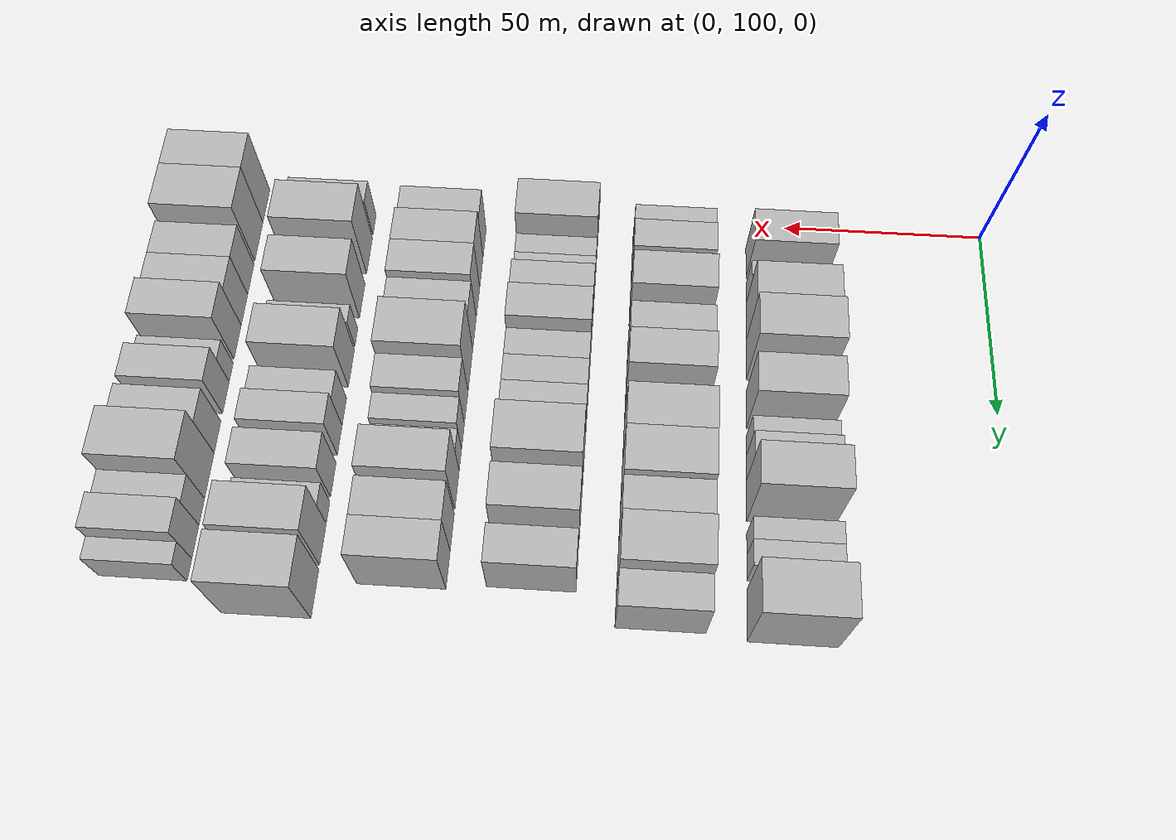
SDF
<sdf version="1.6">
 <world name="default">
  <model name="building_67">
   <static>1</static>
   <pose>50.0000 111.1929 0 0.000000 0.000000 0.000000</pose>
   <link name="link">
    <pose>0 0 9.00 0 0 0</pose>
    <collision name="collision"><geometry><box><size>20.0000 8.9841 18.0000</size></box></geometry></collision>
    <visual name="visual">
     <cast_shadows>0</cast_shadows>
     <geometry><box><size>20.0000 8.9841 18.0000</size></box></geometry>
     <material>
      <script>
       <uri>model://HANNAS_wall/materials/scripts</uri>
       <uri>model://HANNAS_wall/materials/textures</uri>
       <name>vrc/HANNAS_wall</name>
      </script>
     </material>
    </visual>
   </link>
  </model>
  <model name="building_68">
   <static>1</static>
   <pose>50.0000 120.5003 0 0.000000 0.000000 0.000000</pose>
   <link name="link">
    <pose>0 0 6.00 0 0 0</pose>
    <collision name="collision"><geometry><box><size>20.0000 5.6305 12.0000</size></box></geometry></collision>
    <visual name="visual">
     <cast_shadows>0</cast_shadows>
     <geometry><box><size>20.0000 5.6305 12.0000</size></box></geometry>
     <material>
      <script>
       <uri>model://HANNAS_wall/materials/scripts</uri>
       <uri>model://HANNAS_wall/materials/textures</uri>
       <name>vrc/HANNAS_wall</name>
      </script>
     </material>
    </visual>
   </link>
  </model>
  <model name="building_69">
   <static>1</static>
   <pose>50.0000 128.4947 0 0.000000 0.000000 0.000000</pose>
   <link name="link">
    <pose>0 0 10.50 0 0 0</pose>
    <collision name="collision"><geometry><box><size>20.0000 10.3583 21.0000</size></box></geometry></collision>
    <visual name="visual">
     <cast_shadows>0</cast_shadows>
     <geometry><box><size>20.0000 10.3583 21.0000</size></box></geometry>
     <material>
      <script>
       <uri>model://HANNAS_wall/materials/scripts</uri>
       <uri>model://HANNAS_wall/materials/textures</uri>
       <name>vrc/HANNAS_wall</name>
      </script>
     </material>
    </visual>
   </link>
  </model>
  <model name="building_70">
   <static>1</static>
   <pose>50.0000 139.0473 0 0.000000 0.000000 0.000000</pose>
   <link name="link">
    <pose>0 0 12.00 0 0 0</pose>
    <collision name="collision"><geometry><box><size>20.0000 10.7471 24.0000</size></box></geometry></collision>
    <visual name="visual">
     <cast_shadows>0</cast_shadows>
     <geometry><box><size>20.0000 10.7471 24.0000</size></box></geometry>
     <material>
      <script>
       <uri>model://HANNAS_wall/materials/scripts</uri>
       <uri>model://HANNAS_wall/materials/textures</uri>
       <name>vrc/HANNAS_wall</name>
      </script>
     </material>
    </visual>
   </link>
  </model>
  <model name="building_71">
   <static>1</static>
   <pose>50.0000 152.3400 0 0.000000 0.000000 0.000000</pose>
   <link name="link">
    <pose>0 0 10.50 0 0 0</pose>
    <collision name="collision"><geometry><box><size>20.0000 9.8382 21.0000</size></box></geometry></collision>
    <visual name="visual">
     <cast_shadows>0</cast_shadows>
     <geometry><box><size>20.0000 9.8382 21.0000</size></box></geometry>
     <material>
      <script>
       <uri>model://HANNAS_wall/materials/scripts</uri>
       <uri>model://HANNAS_wall/materials/textures</uri>
       <name>vrc/HANNAS_wall</name>
      </script>
     </material>
    </visual>
   </link>
  </model>
  <model name="building_72">
   <static>1</static>
   <pose>50.0000 161.7751 0 0.000000 0.000000 0.000000</pose>
   <link name="link">
    <pose>0 0 6.00 0 0 0</pose>
    <collision name="collision"><geometry><box><size>20.0000 5.0319 12.0000</size></box></geometry></collision>
    <visual name="visual">
     <cast_shadows>0</cast_shadows>
     <geometry><box><size>20.0000 5.0319 12.0000</size></box></geometry>
     <material>
      <script>
       <uri>model://HANNAS_wall/materials/scripts</uri>
       <uri>model://HANNAS_wall/materials/textures</uri>
       <name>vrc/HANNAS_wall</name>
      </script>
     </material>
    </visual>
   </link>
  </model>
  <model name="building_73">
   <static>1</static>
   <pose>50.0000 167.3894 0 0.000000 0.000000 0.000000</pose>
   <link name="link">
    <pose>0 0 7.50 0 0 0</pose>
    <collision name="collision"><geometry><box><size>20.0000 6.1968 15.0000</size></box></geometry></collision>
    <visual name="visual">
     <cast_shadows>0</cast_shadows>
     <geometry><box><size>20.0000 6.1968 15.0000</size></box></geometry>
     <material>
      <script>
       <uri>model://HANNAS_wall/materials/scripts</uri>
       <uri>model://HANNAS_wall/materials/textures</uri>
       <name>vrc/HANNAS_wall</name>
      </script>
     </material>
    </visual>
   </link>
  </model>
  <model name="building_74">
   <static>1</static>
   <pose>50.0000 175.5122 0 0.000000 0.000000 0.000000</pose>
   <link name="link">
    <pose>0 0 12.00 0 0 0</pose>
    <collision name="collision"><geometry><box><size>20.0000 10.0486 24.0000</size></box></geometry></collision>
    <visual name="visual">
     <cast_shadows>0</cast_shadows>
     <geometry><box><size>20.0000 10.0486 24.0000</size></box></geometry>
     <material>
      <script>
       <uri>model://HANNAS_wall/materials/scripts</uri>
       <uri>model://HANNAS_wall/materials/textures</uri>
       <name>vrc/HANNAS_wall</name>
      </script>
     </material>
    </visual>
   </link>
  </model>
  <model name="building_75">
   <static>1</static>
   <pose>50.0000 186.1317 0 0.000000 0.000000 0.000000</pose>
   <link name="link">
    <pose>0 0 6.00 0 0 0</pose>
    <collision name="collision"><geometry><box><size>20.0000 5.1905 12.0000</size></box></geometry></collision>
    <visual name="visual">
     <cast_shadows>0</cast_shadows>
     <geometry><box><size>20.0000 5.1905 12.0000</size></box></geometry>
     <material>
      <script>
       <uri>model://HANNAS_wall/materials/scripts</uri>
       <uri>model://HANNAS_wall/materials/textures</uri>
       <name>vrc/HANNAS_wall</name>
      </script>
     </material>
    </visual>
   </link>
  </model>
  <model name="building_76">
   <static>1</static>
   <pose>50.0000 191.6930 0 0.000000 0.000000 0.000000</pose>
   <link name="link">
    <pose>0 0 6.00 0 0 0</pose>
    <collision name="collision"><geometry><box><size>20.0000 5.9321 12.0000</size></box></geometry></collision>
    <visual name="visual">
     <cast_shadows>0</cast_shadows>
     <geometry><box><size>20.0000 5.9321 12.0000</size></box></geometry>
     <material>
      <script>
       <uri>model://HANNAS_wall/materials/scripts</uri>
       <uri>model://HANNAS_wall/materials/textures</uri>
       <name>vrc/HANNAS_wall</name>
      </script>
     </material>
    </visual>
   </link>
  </model>
  <model name="building_77">
   <static>1</static>
   <pose>50.0000 202.4941 0 0.000000 0.000000 0.000000</pose>
   <link name="link">
    <pose>0 0 12.00 0 0 0</pose>
    <collision name="collision"><geometry><box><size>20.0000 11.6701 24.0000</size></box></geometry></collision>
    <visual name="visual">
     <cast_shadows>0</cast_shadows>
     <geometry><box><size>20.0000 11.6701 24.0000</size></box></geometry>
     <material>
      <script>
       <uri>model://HANNAS_wall/materials/scripts</uri>
       <uri>model://HANNAS_wall/materials/textures</uri>
       <name>vrc/HANNAS_wall</name>
      </script>
     </material>
    </visual>
   </link>
  </model>
  <model name="building_176">
   <static>1</static>
   <pose>79.0000 108.3001 0 0.000000 0.000000 0.000000</pose>
   <link name="link">
    <pose>0 0 7.50 0 0 0</pose>
    <collision name="collision"><geometry><box><size>20.0000 6.1606 15.0000</size></box></geometry></collision>
    <visual name="visual">
     <cast_shadows>0</cast_shadows>
     <geometry><box><size>20.0000 6.1606 15.0000</size></box></geometry>
     <material>
      <script>
       <uri>model://HANNAS_wall/materials/scripts</uri>
       <uri>model://HANNAS_wall/materials/textures</uri>
       <name>vrc/HANNAS_wall</name>
      </script>
     </material>
    </visual>
   </link>
  </model>
  <model name="building_177">
   <static>1</static>
   <pose>79.0000 115.2549 0 0.000000 0.000000 0.000000</pose>
   <link name="link">
    <pose>0 0 9.00 0 0 0</pose>
    <collision name="collision"><geometry><box><size>20.0000 7.7490 18.0000</size></box></geometry></collision>
    <visual name="visual">
     <cast_shadows>0</cast_shadows>
     <geometry><box><size>20.0000 7.7490 18.0000</size></box></geometry>
     <material>
      <script>
       <uri>model://HANNAS_wall/materials/scripts</uri>
       <uri>model://HANNAS_wall/materials/textures</uri>
       <name>vrc/HANNAS_wall</name>
      </script>
     </material>
    </visual>
   </link>
  </model>
  <model name="building_178">
   <static>1</static>
   <pose>79.0000 126.6970 0 0.000000 0.000000 0.000000</pose>
   <link name="link">
    <pose>0 0 10.50 0 0 0</pose>
    <collision name="collision"><geometry><box><size>20.0000 9.1352 21.0000</size></box></geometry></collision>
    <visual name="visual">
     <cast_shadows>0</cast_shadows>
     <geometry><box><size>20.0000 9.1352 21.0000</size></box></geometry>
     <material>
      <script>
       <uri>model://HANNAS_wall/materials/scripts</uri>
       <uri>model://HANNAS_wall/materials/textures</uri>
       <name>vrc/HANNAS_wall</name>
      </script>
     </material>
    </visual>
   </link>
  </model>
  <model name="building_179">
   <static>1</static>
   <pose>79.0000 138.5637 0 0.000000 0.000000 0.000000</pose>
   <link name="link">
    <pose>0 0 9.00 0 0 0</pose>
    <collision name="collision"><geometry><box><size>20.0000 8.5983 18.0000</size></box></geometry></collision>
    <visual name="visual">
     <cast_shadows>0</cast_shadows>
     <geometry><box><size>20.0000 8.5983 18.0000</size></box></geometry>
     <material>
      <script>
       <uri>model://HANNAS_wall/materials/scripts</uri>
       <uri>model://HANNAS_wall/materials/textures</uri>
       <name>vrc/HANNAS_wall</name>
      </script>
     </material>
    </visual>
   </link>
  </model>
  <model name="building_180">
   <static>1</static>
   <pose>79.0000 147.4059 0 0.000000 0.000000 0.000000</pose>
   <link name="link">
    <pose>0 0 10.50 0 0 0</pose>
    <collision name="collision"><geometry><box><size>20.0000 9.0859 21.0000</size></box></geometry></collision>
    <visual name="visual">
     <cast_shadows>0</cast_shadows>
     <geometry><box><size>20.0000 9.0859 21.0000</size></box></geometry>
     <material>
      <script>
       <uri>model://HANNAS_wall/materials/scripts</uri>
       <uri>model://HANNAS_wall/materials/textures</uri>
       <name>vrc/HANNAS_wall</name>
      </script>
     </material>
    </visual>
   </link>
  </model>
  <model name="building_181">
   <static>1</static>
   <pose>79.0000 155.5616 0 0.000000 0.000000 0.000000</pose>
   <link name="link">
    <pose>0 0 6.00 0 0 0</pose>
    <collision name="collision"><geometry><box><size>20.0000 5.2255 12.0000</size></box></geometry></collision>
    <visual name="visual">
     <cast_shadows>0</cast_shadows>
     <geometry><box><size>20.0000 5.2255 12.0000</size></box></geometry>
     <material>
      <script>
       <uri>model://HANNAS_wall/materials/scripts</uri>
       <uri>model://HANNAS_wall/materials/textures</uri>
       <name>vrc/HANNAS_wall</name>
      </script>
     </material>
    </visual>
   </link>
  </model>
  <model name="building_182">
   <static>1</static>
   <pose>79.0000 163.2760 0 0.000000 0.000000 0.000000</pose>
   <link name="link">
    <pose>0 0 12.00 0 0 0</pose>
    <collision name="collision"><geometry><box><size>20.0000 10.2034 24.0000</size></box></geometry></collision>
    <visual name="visual">
     <cast_shadows>0</cast_shadows>
     <geometry><box><size>20.0000 10.2034 24.0000</size></box></geometry>
     <material>
      <script>
       <uri>model://HANNAS_wall/materials/scripts</uri>
       <uri>model://HANNAS_wall/materials/textures</uri>
       <name>vrc/HANNAS_wall</name>
      </script>
     </material>
    </visual>
   </link>
  </model>
  <model name="building_183">
   <static>1</static>
   <pose>79.0000 173.7408 0 0.000000 0.000000 0.000000</pose>
   <link name="link">
    <pose>0 0 12.00 0 0 0</pose>
    <collision name="collision"><geometry><box><size>20.0000 10.7262 24.0000</size></box></geometry></collision>
    <visual name="visual">
     <cast_shadows>0</cast_shadows>
     <geometry><box><size>20.0000 10.7262 24.0000</size></box></geometry>
     <material>
      <script>
       <uri>model://HANNAS_wall/materials/scripts</uri>
       <uri>model://HANNAS_wall/materials/textures</uri>
       <name>vrc/HANNAS_wall</name>
      </script>
     </material>
    </visual>
   </link>
  </model>
  <model name="building_184">
   <static>1</static>
   <pose>79.0000 183.5274 0 0.000000 0.000000 0.000000</pose>
   <link name="link">
    <pose>0 0 10.50 0 0 0</pose>
    <collision name="collision"><geometry><box><size>20.0000 8.8470 21.0000</size></box></geometry></collision>
    <visual name="visual">
     <cast_shadows>0</cast_shadows>
     <geometry><box><size>20.0000 8.8470 21.0000</size></box></geometry>
     <material>
      <script>
       <uri>model://HANNAS_wall/materials/scripts</uri>
       <uri>model://HANNAS_wall/materials/textures</uri>
       <name>vrc/HANNAS_wall</name>
      </script>
     </material>
    </visual>
   </link>
  </model>
  <model name="building_185">
   <static>1</static>
   <pose>79.0000 193.4704 0 0.000000 0.000000 0.000000</pose>
   <link name="link">
    <pose>0 0 12.00 0 0 0</pose>
    <collision name="collision"><geometry><box><size>20.0000 11.0390 24.0000</size></box></geometry></collision>
    <visual name="visual">
     <cast_shadows>0</cast_shadows>
     <geometry><box><size>20.0000 11.0390 24.0000</size></box></geometry>
     <material>
      <script>
       <uri>model://HANNAS_wall/materials/scripts</uri>
       <uri>model://HANNAS_wall/materials/textures</uri>
       <name>vrc/HANNAS_wall</name>
      </script>
     </material>
    </visual>
   </link>
  </model>
  <model name="building_186">
   <static>1</static>
   <pose>79.0000 203.0285 0 0.000000 0.000000 0.000000</pose>
   <link name="link">
    <pose>0 0 9.00 0 0 0</pose>
    <collision name="collision"><geometry><box><size>20.0000 8.0772 18.0000</size></box></geometry></collision>
    <visual name="visual">
     <cast_shadows>0</cast_shadows>
     <geometry><box><size>20.0000 8.0772 18.0000</size></box></geometry>
     <material>
      <script>
       <uri>model://HANNAS_wall/materials/scripts</uri>
       <uri>model://HANNAS_wall/materials/textures</uri>
       <name>vrc/HANNAS_wall</name>
      </script>
     </material>
    </visual>
   </link>
  </model>
  <model name="building_284">
   <static>1</static>
   <pose>108.0000 100.8197 0 0.000000 0.000000 0.000000</pose>
   <link name="link">
    <pose>0 0 6.00 0 0 0</pose>
    <collision name="collision"><geometry><box><size>20.0000 5.3819 12.0000</size></box></geometry></collision>
    <visual name="visual">
     <cast_shadows>0</cast_shadows>
     <geometry><box><size>20.0000 5.3819 12.0000</size></box></geometry>
     <material>
      <script>
       <uri>model://HANNAS_wall/materials/scripts</uri>
       <uri>model://HANNAS_wall/materials/textures</uri>
       <name>vrc/HANNAS_wall</name>
      </script>
     </material>
    </visual>
   </link>
  </model>
  <model name="building_285">
   <static>1</static>
   <pose>108.0000 108.5546 0 0.000000 0.000000 0.000000</pose>
   <link name="link">
    <pose>0 0 10.50 0 0 0</pose>
    <collision name="collision"><geometry><box><size>20.0000 10.0879 21.0000</size></box></geometry></collision>
    <visual name="visual">
     <cast_shadows>0</cast_shadows>
     <geometry><box><size>20.0000 10.0879 21.0000</size></box></geometry>
     <material>
      <script>
       <uri>model://HANNAS_wall/materials/scripts</uri>
       <uri>model://HANNAS_wall/materials/textures</uri>
       <name>vrc/HANNAS_wall</name>
      </script>
     </material>
    </visual>
   </link>
  </model>
  <model name="building_286">
   <static>1</static>
   <pose>108.0000 116.2579 0 0.000000 0.000000 0.000000</pose>
   <link name="link">
    <pose>0 0 6.00 0 0 0</pose>
    <collision name="collision"><geometry><box><size>20.0000 5.3187 12.0000</size></box></geometry></collision>
    <visual name="visual">
     <cast_shadows>0</cast_shadows>
     <geometry><box><size>20.0000 5.3187 12.0000</size></box></geometry>
     <material>
      <script>
       <uri>model://HANNAS_wall/materials/scripts</uri>
       <uri>model://HANNAS_wall/materials/textures</uri>
       <name>vrc/HANNAS_wall</name>
      </script>
     </material>
    </visual>
   </link>
  </model>
  <model name="building_287">
   <static>1</static>
   <pose>108.0000 121.8512 0 0.000000 0.000000 0.000000</pose>
   <link name="link">
    <pose>0 0 6.00 0 0 0</pose>
    <collision name="collision"><geometry><box><size>20.0000 5.8679 12.0000</size></box></geometry></collision>
    <visual name="visual">
     <cast_shadows>0</cast_shadows>
     <geometry><box><size>20.0000 5.8679 12.0000</size></box></geometry>
     <material>
      <script>
       <uri>model://HANNAS_wall/materials/scripts</uri>
       <uri>model://HANNAS_wall/materials/textures</uri>
       <name>vrc/HANNAS_wall</name>
      </script>
     </material>
    </visual>
   </link>
  </model>
  <model name="building_288">
   <static>1</static>
   <pose>108.0000 128.8409 0 0.000000 0.000000 0.000000</pose>
   <link name="link">
    <pose>0 0 9.00 0 0 0</pose>
    <collision name="collision"><geometry><box><size>20.0000 8.1114 18.0000</size></box></geometry></collision>
    <visual name="visual">
     <cast_shadows>0</cast_shadows>
     <geometry><box><size>20.0000 8.1114 18.0000</size></box></geometry>
     <material>
      <script>
       <uri>model://HANNAS_wall/materials/scripts</uri>
       <uri>model://HANNAS_wall/materials/textures</uri>
       <name>vrc/HANNAS_wall</name>
      </script>
     </material>
    </visual>
   </link>
  </model>
  <model name="building_289">
   <static>1</static>
   <pose>108.0000 137.3045 0 0.000000 0.000000 0.000000</pose>
   <link name="link">
    <pose>0 0 10.50 0 0 0</pose>
    <collision name="collision"><geometry><box><size>20.0000 8.8159 21.0000</size></box></geometry></collision>
    <visual name="visual">
     <cast_shadows>0</cast_shadows>
     <geometry><box><size>20.0000 8.8159 21.0000</size></box></geometry>
     <material>
      <script>
       <uri>model://HANNAS_wall/materials/scripts</uri>
       <uri>model://HANNAS_wall/materials/textures</uri>
       <name>vrc/HANNAS_wall</name>
      </script>
     </material>
    </visual>
   </link>
  </model>
  <model name="building_290">
   <static>1</static>
   <pose>108.0000 145.1362 0 0.000000 0.000000 0.000000</pose>
   <link name="link">
    <pose>0 0 7.50 0 0 0</pose>
    <collision name="collision"><geometry><box><size>20.0000 6.8475 15.0000</size></box></geometry></collision>
    <visual name="visual">
     <cast_shadows>0</cast_shadows>
     <geometry><box><size>20.0000 6.8475 15.0000</size></box></geometry>
     <material>
      <script>
       <uri>model://HANNAS_wall/materials/scripts</uri>
       <uri>model://HANNAS_wall/materials/textures</uri>
       <name>vrc/HANNAS_wall</name>
      </script>
     </material>
    </visual>
   </link>
  </model>
  <model name="building_291">
   <static>1</static>
   <pose>108.0000 151.8893 0 0.000000 0.000000 0.000000</pose>
   <link name="link">
    <pose>0 0 7.50 0 0 0</pose>
    <collision name="collision"><geometry><box><size>20.0000 6.6587 15.0000</size></box></geometry></collision>
    <visual name="visual">
     <cast_shadows>0</cast_shadows>
     <geometry><box><size>20.0000 6.6587 15.0000</size></box></geometry>
     <material>
      <script>
       <uri>model://HANNAS_wall/materials/scripts</uri>
       <uri>model://HANNAS_wall/materials/textures</uri>
       <name>vrc/HANNAS_wall</name>
      </script>
     </material>
    </visual>
   </link>
  </model>
  <model name="building_292">
   <static>1</static>
   <pose>108.0000 158.8488 0 0.000000 0.000000 0.000000</pose>
   <link name="link">
    <pose>0 0 7.50 0 0 0</pose>
    <collision name="collision"><geometry><box><size>20.0000 7.2603 15.0000</size></box></geometry></collision>
    <visual name="visual">
     <cast_shadows>0</cast_shadows>
     <geometry><box><size>20.0000 7.2603 15.0000</size></box></geometry>
     <material>
      <script>
       <uri>model://HANNAS_wall/materials/scripts</uri>
       <uri>model://HANNAS_wall/materials/textures</uri>
       <name>vrc/HANNAS_wall</name>
      </script>
     </material>
    </visual>
   </link>
  </model>
  <model name="building_293">
   <static>1</static>
   <pose>108.0000 170.1722 0 0.000000 0.000000 0.000000</pose>
   <link name="link">
    <pose>0 0 12.00 0 0 0</pose>
    <collision name="collision"><geometry><box><size>20.0000 11.3865 24.0000</size></box></geometry></collision>
    <visual name="visual">
     <cast_shadows>0</cast_shadows>
     <geometry><box><size>20.0000 11.3865 24.0000</size></box></geometry>
     <material>
      <script>
       <uri>model://HANNAS_wall/materials/scripts</uri>
       <uri>model://HANNAS_wall/materials/textures</uri>
       <name>vrc/HANNAS_wall</name>
      </script>
     </material>
    </visual>
   </link>
  </model>
  <model name="building_294">
   <static>1</static>
   <pose>108.0000 182.8473 0 0.000000 0.000000 0.000000</pose>
   <link name="link">
    <pose>0 0 10.50 0 0 0</pose>
    <collision name="collision"><geometry><box><size>20.0000 9.9638 21.0000</size></box></geometry></collision>
    <visual name="visual">
     <cast_shadows>0</cast_shadows>
     <geometry><box><size>20.0000 9.9638 21.0000</size></box></geometry>
     <material>
      <script>
       <uri>model://HANNAS_wall/materials/scripts</uri>
       <uri>model://HANNAS_wall/materials/textures</uri>
       <name>vrc/HANNAS_wall</name>
      </script>
     </material>
    </visual>
   </link>
  </model>
  <model name="building_295">
   <static>1</static>
   <pose>108.0000 195.2101 0 0.000000 0.000000 0.000000</pose>
   <link name="link">
    <pose>0 0 9.00 0 0 0</pose>
    <collision name="collision"><geometry><box><size>20.0000 8.7617 18.0000</size></box></geometry></collision>
    <visual name="visual">
     <cast_shadows>0</cast_shadows>
     <geometry><box><size>20.0000 8.7617 18.0000</size></box></geometry>
     <material>
      <script>
       <uri>model://HANNAS_wall/materials/scripts</uri>
       <uri>model://HANNAS_wall/materials/textures</uri>
       <name>vrc/HANNAS_wall</name>
      </script>
     </material>
    </visual>
   </link>
  </model>
  <model name="building_400">
   <static>1</static>
   <pose>137.0000 109.6346 0 0.000000 0.000000 0.000000</pose>
   <link name="link">
    <pose>0 0 9.00 0 0 0</pose>
    <collision name="collision"><geometry><box><size>20.0000 8.4306 18.0000</size></box></geometry></collision>
    <visual name="visual">
     <cast_shadows>0</cast_shadows>
     <geometry><box><size>20.0000 8.4306 18.0000</size></box></geometry>
     <material>
      <script>
       <uri>model://HANNAS_wall/materials/scripts</uri>
       <uri>model://HANNAS_wall/materials/textures</uri>
       <name>vrc/HANNAS_wall</name>
      </script>
     </material>
    </visual>
   </link>
  </model>
  <model name="building_401">
   <static>1</static>
   <pose>137.0000 118.3114 0 0.000000 0.000000 0.000000</pose>
   <link name="link">
    <pose>0 0 10.50 0 0 0</pose>
    <collision name="collision"><geometry><box><size>20.0000 8.9230 21.0000</size></box></geometry></collision>
    <visual name="visual">
     <cast_shadows>0</cast_shadows>
     <geometry><box><size>20.0000 8.9230 21.0000</size></box></geometry>
     <material>
      <script>
       <uri>model://HANNAS_wall/materials/scripts</uri>
       <uri>model://HANNAS_wall/materials/textures</uri>
       <name>vrc/HANNAS_wall</name>
      </script>
     </material>
    </visual>
   </link>
  </model>
  <model name="building_402">
   <static>1</static>
   <pose>137.0000 127.1394 0 0.000000 0.000000 0.000000</pose>
   <link name="link">
    <pose>0 0 10.50 0 0 0</pose>
    <collision name="collision"><geometry><box><size>20.0000 8.7331 21.0000</size></box></geometry></collision>
    <visual name="visual">
     <cast_shadows>0</cast_shadows>
     <geometry><box><size>20.0000 8.7331 21.0000</size></box></geometry>
     <material>
      <script>
       <uri>model://HANNAS_wall/materials/scripts</uri>
       <uri>model://HANNAS_wall/materials/textures</uri>
       <name>vrc/HANNAS_wall</name>
      </script>
     </material>
    </visual>
   </link>
  </model>
  <model name="building_403">
   <static>1</static>
   <pose>137.0000 135.9346 0 0.000000 0.000000 0.000000</pose>
   <link name="link">
    <pose>0 0 9.00 0 0 0</pose>
    <collision name="collision"><geometry><box><size>20.0000 8.8572 18.0000</size></box></geometry></collision>
    <visual name="visual">
     <cast_shadows>0</cast_shadows>
     <geometry><box><size>20.0000 8.8572 18.0000</size></box></geometry>
     <material>
      <script>
       <uri>model://HANNAS_wall/materials/scripts</uri>
       <uri>model://HANNAS_wall/materials/textures</uri>
       <name>vrc/HANNAS_wall</name>
      </script>
     </material>
    </visual>
   </link>
  </model>
  <model name="building_404">
   <static>1</static>
   <pose>137.0000 146.0933 0 0.000000 0.000000 0.000000</pose>
   <link name="link">
    <pose>0 0 12.00 0 0 0</pose>
    <collision name="collision"><geometry><box><size>20.0000 11.4601 24.0000</size></box></geometry></collision>
    <visual name="visual">
     <cast_shadows>0</cast_shadows>
     <geometry><box><size>20.0000 11.4601 24.0000</size></box></geometry>
     <material>
      <script>
       <uri>model://HANNAS_wall/materials/scripts</uri>
       <uri>model://HANNAS_wall/materials/textures</uri>
       <name>vrc/HANNAS_wall</name>
      </script>
     </material>
    </visual>
   </link>
  </model>
  <model name="building_405">
   <static>1</static>
   <pose>137.0000 156.0721 0 0.000000 0.000000 0.000000</pose>
   <link name="link">
    <pose>0 0 9.00 0 0 0</pose>
    <collision name="collision"><geometry><box><size>20.0000 8.4977 18.0000</size></box></geometry></collision>
    <visual name="visual">
     <cast_shadows>0</cast_shadows>
     <geometry><box><size>20.0000 8.4977 18.0000</size></box></geometry>
     <material>
      <script>
       <uri>model://HANNAS_wall/materials/scripts</uri>
       <uri>model://HANNAS_wall/materials/textures</uri>
       <name>vrc/HANNAS_wall</name>
      </script>
     </material>
    </visual>
   </link>
  </model>
  <model name="building_406">
   <static>1</static>
   <pose>137.0000 163.5611 0 0.000000 0.000000 0.000000</pose>
   <link name="link">
    <pose>0 0 7.50 0 0 0</pose>
    <collision name="collision"><geometry><box><size>20.0000 6.4803 15.0000</size></box></geometry></collision>
    <visual name="visual">
     <cast_shadows>0</cast_shadows>
     <geometry><box><size>20.0000 6.4803 15.0000</size></box></geometry>
     <material>
      <script>
       <uri>model://HANNAS_wall/materials/scripts</uri>
       <uri>model://HANNAS_wall/materials/textures</uri>
       <name>vrc/HANNAS_wall</name>
      </script>
     </material>
    </visual>
   </link>
  </model>
  <model name="building_407">
   <static>1</static>
   <pose>137.0000 169.5515 0 0.000000 0.000000 0.000000</pose>
   <link name="link">
    <pose>0 0 6.00 0 0 0</pose>
    <collision name="collision"><geometry><box><size>20.0000 5.5006 12.0000</size></box></geometry></collision>
    <visual name="visual">
     <cast_shadows>0</cast_shadows>
     <geometry><box><size>20.0000 5.5006 12.0000</size></box></geometry>
     <material>
      <script>
       <uri>model://HANNAS_wall/materials/scripts</uri>
       <uri>model://HANNAS_wall/materials/textures</uri>
       <name>vrc/HANNAS_wall</name>
      </script>
     </material>
    </visual>
   </link>
  </model>
  <model name="building_408">
   <static>1</static>
   <pose>137.0000 177.1515 0 0.000000 0.000000 0.000000</pose>
   <link name="link">
    <pose>0 0 12.00 0 0 0</pose>
    <collision name="collision"><geometry><box><size>20.0000 9.6994 24.0000</size></box></geometry></collision>
    <visual name="visual">
     <cast_shadows>0</cast_shadows>
     <geometry><box><size>20.0000 9.6994 24.0000</size></box></geometry>
     <material>
      <script>
       <uri>model://HANNAS_wall/materials/scripts</uri>
       <uri>model://HANNAS_wall/materials/textures</uri>
       <name>vrc/HANNAS_wall</name>
      </script>
     </material>
    </visual>
   </link>
  </model>
  <model name="building_409">
   <static>1</static>
   <pose>137.0000 187.4475 0 0.000000 0.000000 0.000000</pose>
   <link name="link">
    <pose>0 0 10.50 0 0 0</pose>
    <collision name="collision"><geometry><box><size>20.0000 8.8927 21.0000</size></box></geometry></collision>
    <visual name="visual">
     <cast_shadows>0</cast_shadows>
     <geometry><box><size>20.0000 8.8927 21.0000</size></box></geometry>
     <material>
      <script>
       <uri>model://HANNAS_wall/materials/scripts</uri>
       <uri>model://HANNAS_wall/materials/textures</uri>
       <name>vrc/HANNAS_wall</name>
      </script>
     </material>
    </visual>
   </link>
  </model>
  <model name="building_410">
   <static>1</static>
   <pose>137.0000 196.3289 0 0.000000 0.000000 0.000000</pose>
   <link name="link">
    <pose>0 0 10.50 0 0 0</pose>
    <collision name="collision"><geometry><box><size>20.0000 8.8700 21.0000</size></box></geometry></collision>
    <visual name="visual">
     <cast_shadows>0</cast_shadows>
     <geometry><box><size>20.0000 8.8700 21.0000</size></box></geometry>
     <material>
      <script>
       <uri>model://HANNAS_wall/materials/scripts</uri>
       <uri>model://HANNAS_wall/materials/textures</uri>
       <name>vrc/HANNAS_wall</name>
      </script>
     </material>
    </visual>
   </link>
  </model>
  <model name="building_518">
   <static>1</static>
   <pose>166.0000 105.6502 0 0.000000 0.000000 0.000000</pose>
   <link name="link">
    <pose>0 0 7.50 0 0 0</pose>
    <collision name="collision"><geometry><box><size>20.0000 6.1828 15.0000</size></box></geometry></collision>
    <visual name="visual">
     <cast_shadows>0</cast_shadows>
     <geometry><box><size>20.0000 6.1828 15.0000</size></box></geometry>
     <material>
      <script>
       <uri>model://HANNAS_wall/materials/scripts</uri>
       <uri>model://HANNAS_wall/materials/textures</uri>
       <name>vrc/HANNAS_wall</name>
      </script>
     </material>
    </visual>
   </link>
  </model>
  <model name="building_519">
   <static>1</static>
   <pose>166.0000 115.1010 0 0.000000 0.000000 0.000000</pose>
   <link name="link">
    <pose>0 0 12.00 0 0 0</pose>
    <collision name="collision"><geometry><box><size>20.0000 10.7187 24.0000</size></box></geometry></collision>
    <visual name="visual">
     <cast_shadows>0</cast_shadows>
     <geometry><box><size>20.0000 10.7187 24.0000</size></box></geometry>
     <material>
      <script>
       <uri>model://HANNAS_wall/materials/scripts</uri>
       <uri>model://HANNAS_wall/materials/textures</uri>
       <name>vrc/HANNAS_wall</name>
      </script>
     </material>
    </visual>
   </link>
  </model>
  <model name="building_520">
   <static>1</static>
   <pose>166.0000 128.3717 0 0.000000 0.000000 0.000000</pose>
   <link name="link">
    <pose>0 0 10.50 0 0 0</pose>
    <collision name="collision"><geometry><box><size>20.0000 9.8227 21.0000</size></box></geometry></collision>
    <visual name="visual">
     <cast_shadows>0</cast_shadows>
     <geometry><box><size>20.0000 9.8227 21.0000</size></box></geometry>
     <material>
      <script>
       <uri>model://HANNAS_wall/materials/scripts</uri>
       <uri>model://HANNAS_wall/materials/textures</uri>
       <name>vrc/HANNAS_wall</name>
      </script>
     </material>
    </visual>
   </link>
  </model>
  <model name="building_521">
   <static>1</static>
   <pose>166.0000 138.7623 0 0.000000 0.000000 0.000000</pose>
   <link name="link">
    <pose>0 0 6.00 0 0 0</pose>
    <collision name="collision"><geometry><box><size>20.0000 4.9584 12.0000</size></box></geometry></collision>
    <visual name="visual">
     <cast_shadows>0</cast_shadows>
     <geometry><box><size>20.0000 4.9584 12.0000</size></box></geometry>
     <material>
      <script>
       <uri>model://HANNAS_wall/materials/scripts</uri>
       <uri>model://HANNAS_wall/materials/textures</uri>
       <name>vrc/HANNAS_wall</name>
      </script>
     </material>
    </visual>
   </link>
  </model>
  <model name="building_522">
   <static>1</static>
   <pose>166.0000 147.3022 0 0.000000 0.000000 0.000000</pose>
   <link name="link">
    <pose>0 0 10.50 0 0 0</pose>
    <collision name="collision"><geometry><box><size>20.0000 10.1215 21.0000</size></box></geometry></collision>
    <visual name="visual">
     <cast_shadows>0</cast_shadows>
     <geometry><box><size>20.0000 10.1215 21.0000</size></box></geometry>
     <material>
      <script>
       <uri>model://HANNAS_wall/materials/scripts</uri>
       <uri>model://HANNAS_wall/materials/textures</uri>
       <name>vrc/HANNAS_wall</name>
      </script>
     </material>
    </visual>
   </link>
  </model>
  <model name="building_523">
   <static>1</static>
   <pose>166.0000 158.9767 0 0.000000 0.000000 0.000000</pose>
   <link name="link">
    <pose>0 0 7.50 0 0 0</pose>
    <collision name="collision"><geometry><box><size>20.0000 7.2273 15.0000</size></box></geometry></collision>
    <visual name="visual">
     <cast_shadows>0</cast_shadows>
     <geometry><box><size>20.0000 7.2273 15.0000</size></box></geometry>
     <material>
      <script>
       <uri>model://HANNAS_wall/materials/scripts</uri>
       <uri>model://HANNAS_wall/materials/textures</uri>
       <name>vrc/HANNAS_wall</name>
      </script>
     </material>
    </visual>
   </link>
  </model>
  <model name="building_524">
   <static>1</static>
   <pose>166.0000 166.3683 0 0.000000 0.000000 0.000000</pose>
   <link name="link">
    <pose>0 0 9.00 0 0 0</pose>
    <collision name="collision"><geometry><box><size>20.0000 7.5559 18.0000</size></box></geometry></collision>
    <visual name="visual">
     <cast_shadows>0</cast_shadows>
     <geometry><box><size>20.0000 7.5559 18.0000</size></box></geometry>
     <material>
      <script>
       <uri>model://HANNAS_wall/materials/scripts</uri>
       <uri>model://HANNAS_wall/materials/textures</uri>
       <name>vrc/HANNAS_wall</name>
      </script>
     </material>
    </visual>
   </link>
  </model>
  <model name="building_525">
   <static>1</static>
   <pose>166.0000 176.4741 0 0.000000 0.000000 0.000000</pose>
   <link name="link">
    <pose>0 0 9.00 0 0 0</pose>
    <collision name="collision"><geometry><box><size>20.0000 8.6557 18.0000</size></box></geometry></collision>
    <visual name="visual">
     <cast_shadows>0</cast_shadows>
     <geometry><box><size>20.0000 8.6557 18.0000</size></box></geometry>
     <material>
      <script>
       <uri>model://HANNAS_wall/materials/scripts</uri>
       <uri>model://HANNAS_wall/materials/textures</uri>
       <name>vrc/HANNAS_wall</name>
      </script>
     </material>
    </visual>
   </link>
  </model>
  <model name="building_526">
   <static>1</static>
   <pose>166.0000 184.4857 0 0.000000 0.000000 0.000000</pose>
   <link name="link">
    <pose>0 0 6.00 0 0 0</pose>
    <collision name="collision"><geometry><box><size>20.0000 5.3676 12.0000</size></box></geometry></collision>
    <visual name="visual">
     <cast_shadows>0</cast_shadows>
     <geometry><box><size>20.0000 5.3676 12.0000</size></box></geometry>
     <material>
      <script>
       <uri>model://HANNAS_wall/materials/scripts</uri>
       <uri>model://HANNAS_wall/materials/textures</uri>
       <name>vrc/HANNAS_wall</name>
      </script>
     </material>
    </visual>
   </link>
  </model>
  <model name="building_527">
   <static>1</static>
   <pose>166.0000 192.0981 0 0.000000 0.000000 0.000000</pose>
   <link name="link">
    <pose>0 0 12.00 0 0 0</pose>
    <collision name="collision"><geometry><box><size>20.0000 9.8571 24.0000</size></box></geometry></collision>
    <visual name="visual">
     <cast_shadows>0</cast_shadows>
     <geometry><box><size>20.0000 9.8571 24.0000</size></box></geometry>
     <material>
      <script>
       <uri>model://HANNAS_wall/materials/scripts</uri>
       <uri>model://HANNAS_wall/materials/textures</uri>
       <name>vrc/HANNAS_wall</name>
      </script>
     </material>
    </visual>
   </link>
  </model>
  <model name="building_528">
   <static>1</static>
   <pose>166.0000 203.6113 0 0.000000 0.000000 0.000000</pose>
   <link name="link">
    <pose>0 0 12.00 0 0 0</pose>
    <collision name="collision"><geometry><box><size>20.0000 11.1692 24.0000</size></box></geometry></collision>
    <visual name="visual">
     <cast_shadows>0</cast_shadows>
     <geometry><box><size>20.0000 11.1692 24.0000</size></box></geometry>
     <material>
      <script>
       <uri>model://HANNAS_wall/materials/scripts</uri>
       <uri>model://HANNAS_wall/materials/textures</uri>
       <name>vrc/HANNAS_wall</name>
      </script>
     </material>
    </visual>
   </link>
  </model>
  <model name="building_629">
   <static>1</static>
   <pose>195.0000 101.5551 0 0.000000 0.000000 0.000000</pose>
   <link name="link">
    <pose>0 0 12.00 0 0 0</pose>
    <collision name="collision"><geometry><box><size>20.0000 10.2203 24.0000</size></box></geometry></collision>
    <visual name="visual">
     <cast_shadows>0</cast_shadows>
     <geometry><box><size>20.0000 10.2203 24.0000</size></box></geometry>
     <material>
      <script>
       <uri>model://HANNAS_wall/materials/scripts</uri>
       <uri>model://HANNAS_wall/materials/textures</uri>
       <name>vrc/HANNAS_wall</name>
      </script>
     </material>
    </visual>
   </link>
  </model>
  <model name="building_630">
   <static>1</static>
   <pose>195.0000 112.5584 0 0.000000 0.000000 0.000000</pose>
   <link name="link">
    <pose>0 0 12.00 0 0 0</pose>
    <collision name="collision"><geometry><box><size>20.0000 11.7864 24.0000</size></box></geometry></collision>
    <visual name="visual">
     <cast_shadows>0</cast_shadows>
     <geometry><box><size>20.0000 11.7864 24.0000</size></box></geometry>
     <material>
      <script>
       <uri>model://HANNAS_wall/materials/scripts</uri>
       <uri>model://HANNAS_wall/materials/textures</uri>
       <name>vrc/HANNAS_wall</name>
      </script>
     </material>
    </visual>
   </link>
  </model>
  <model name="building_631">
   <static>1</static>
   <pose>195.0000 123.9094 0 0.000000 0.000000 0.000000</pose>
   <link name="link">
    <pose>0 0 9.00 0 0 0</pose>
    <collision name="collision"><geometry><box><size>20.0000 8.9155 18.0000</size></box></geometry></collision>
    <visual name="visual">
     <cast_shadows>0</cast_shadows>
     <geometry><box><size>20.0000 8.9155 18.0000</size></box></geometry>
     <material>
      <script>
       <uri>model://HANNAS_wall/materials/scripts</uri>
       <uri>model://HANNAS_wall/materials/textures</uri>
       <name>vrc/HANNAS_wall</name>
      </script>
     </material>
    </visual>
   </link>
  </model>
  <model name="building_632">
   <static>1</static>
   <pose>195.0000 132.7846 0 0.000000 0.000000 0.000000</pose>
   <link name="link">
    <pose>0 0 9.00 0 0 0</pose>
    <collision name="collision"><geometry><box><size>20.0000 8.8349 18.0000</size></box></geometry></collision>
    <visual name="visual">
     <cast_shadows>0</cast_shadows>
     <geometry><box><size>20.0000 8.8349 18.0000</size></box></geometry>
     <material>
      <script>
       <uri>model://HANNAS_wall/materials/scripts</uri>
       <uri>model://HANNAS_wall/materials/textures</uri>
       <name>vrc/HANNAS_wall</name>
      </script>
     </material>
    </visual>
   </link>
  </model>
  <model name="building_633">
   <static>1</static>
   <pose>195.0000 141.9361 0 0.000000 0.000000 0.000000</pose>
   <link name="link">
    <pose>0 0 10.50 0 0 0</pose>
    <collision name="collision"><geometry><box><size>20.0000 9.4680 21.0000</size></box></geometry></collision>
    <visual name="visual">
     <cast_shadows>0</cast_shadows>
     <geometry><box><size>20.0000 9.4680 21.0000</size></box></geometry>
     <material>
      <script>
       <uri>model://HANNAS_wall/materials/scripts</uri>
       <uri>model://HANNAS_wall/materials/textures</uri>
       <name>vrc/HANNAS_wall</name>
      </script>
     </material>
    </visual>
   </link>
  </model>
  <model name="building_634">
   <static>1</static>
   <pose>195.0000 150.2464 0 0.000000 0.000000 0.000000</pose>
   <link name="link">
    <pose>0 0 6.00 0 0 0</pose>
    <collision name="collision"><geometry><box><size>20.0000 5.1526 12.0000</size></box></geometry></collision>
    <visual name="visual">
     <cast_shadows>0</cast_shadows>
     <geometry><box><size>20.0000 5.1526 12.0000</size></box></geometry>
     <material>
      <script>
       <uri>model://HANNAS_wall/materials/scripts</uri>
       <uri>model://HANNAS_wall/materials/textures</uri>
       <name>vrc/HANNAS_wall</name>
      </script>
     </material>
    </visual>
   </link>
  </model>
  <model name="building_635">
   <static>1</static>
   <pose>195.0000 157.0340 0 0.000000 0.000000 0.000000</pose>
   <link name="link">
    <pose>0 0 9.00 0 0 0</pose>
    <collision name="collision"><geometry><box><size>20.0000 8.4227 18.0000</size></box></geometry></collision>
    <visual name="visual">
     <cast_shadows>0</cast_shadows>
     <geometry><box><size>20.0000 8.4227 18.0000</size></box></geometry>
     <material>
      <script>
       <uri>model://HANNAS_wall/materials/scripts</uri>
       <uri>model://HANNAS_wall/materials/textures</uri>
       <name>vrc/HANNAS_wall</name>
      </script>
     </material>
    </visual>
   </link>
  </model>
  <model name="building_636">
   <static>1</static>
   <pose>195.0000 167.3652 0 0.000000 0.000000 0.000000</pose>
   <link name="link">
    <pose>0 0 9.00 0 0 0</pose>
    <collision name="collision"><geometry><box><size>20.0000 8.2395 18.0000</size></box></geometry></collision>
    <visual name="visual">
     <cast_shadows>0</cast_shadows>
     <geometry><box><size>20.0000 8.2395 18.0000</size></box></geometry>
     <material>
      <script>
       <uri>model://HANNAS_wall/materials/scripts</uri>
       <uri>model://HANNAS_wall/materials/textures</uri>
       <name>vrc/HANNAS_wall</name>
      </script>
     </material>
    </visual>
   </link>
  </model>
  <model name="building_637">
   <static>1</static>
   <pose>195.0000 177.1910 0 0.000000 0.000000 0.000000</pose>
   <link name="link">
    <pose>0 0 12.00 0 0 0</pose>
    <collision name="collision"><geometry><box><size>20.0000 11.4123 24.0000</size></box></geometry></collision>
    <visual name="visual">
     <cast_shadows>0</cast_shadows>
     <geometry><box><size>20.0000 11.4123 24.0000</size></box></geometry>
     <material>
      <script>
       <uri>model://HANNAS_wall/materials/scripts</uri>
       <uri>model://HANNAS_wall/materials/textures</uri>
       <name>vrc/HANNAS_wall</name>
      </script>
     </material>
    </visual>
   </link>
  </model>
  <model name="building_638">
   <static>1</static>
   <pose>195.0000 186.1306 0 0.000000 0.000000 0.000000</pose>
   <link name="link">
    <pose>0 0 7.50 0 0 0</pose>
    <collision name="collision"><geometry><box><size>20.0000 6.4669 15.0000</size></box></geometry></collision>
    <visual name="visual">
     <cast_shadows>0</cast_shadows>
     <geometry><box><size>20.0000 6.4669 15.0000</size></box></geometry>
     <material>
      <script>
       <uri>model://HANNAS_wall/materials/scripts</uri>
       <uri>model://HANNAS_wall/materials/textures</uri>
       <name>vrc/HANNAS_wall</name>
      </script>
     </material>
    </visual>
   </link>
  </model>
  <model name="building_639">
   <static>1</static>
   <pose>195.0000 193.3539 0 0.000000 0.000000 0.000000</pose>
   <link name="link">
    <pose>0 0 9.00 0 0 0</pose>
    <collision name="collision"><geometry><box><size>20.0000 7.9797 18.0000</size></box></geometry></collision>
    <visual name="visual">
     <cast_shadows>0</cast_shadows>
     <geometry><box><size>20.0000 7.9797 18.0000</size></box></geometry>
     <material>
      <script>
       <uri>model://HANNAS_wall/materials/scripts</uri>
       <uri>model://HANNAS_wall/materials/textures</uri>
       <name>vrc/HANNAS_wall</name>
      </script>
     </material>
    </visual>
   </link>
  </model>
  <model name="building_640">
   <static>1</static>
   <pose>195.0000 199.9288 0 0.000000 0.000000 0.000000</pose>
   <link name="link">
    <pose>0 0 6.00 0 0 0</pose>
    <collision name="collision"><geometry><box><size>20.0000 5.1702 12.0000</size></box></geometry></collision>
    <visual name="visual">
     <cast_shadows>0</cast_shadows>
     <geometry><box><size>20.0000 5.1702 12.0000</size></box></geometry>
     <material>
      <script>
       <uri>model://HANNAS_wall/materials/scripts</uri>
       <uri>model://HANNAS_wall/materials/textures</uri>
       <name>vrc/HANNAS_wall</name>
      </script>
     </material>
    </visual>
   </link>
  </model>
 </world>
</sdf>
